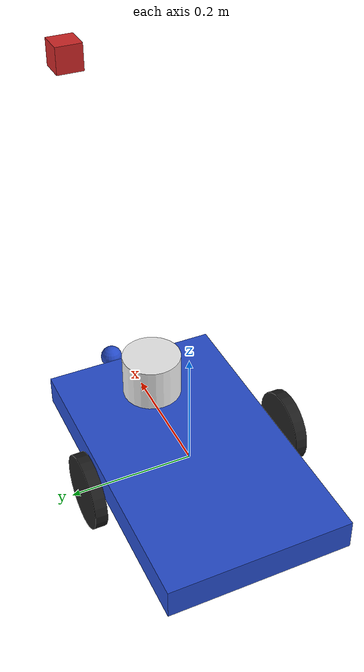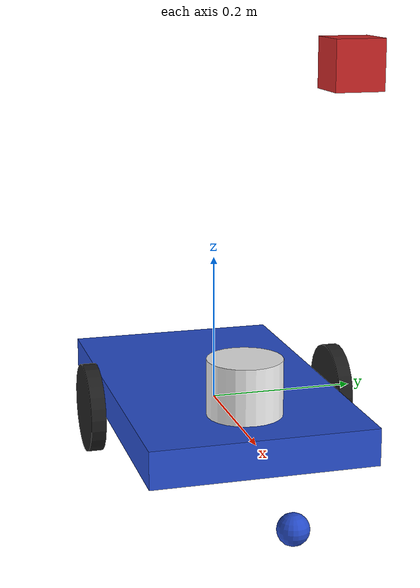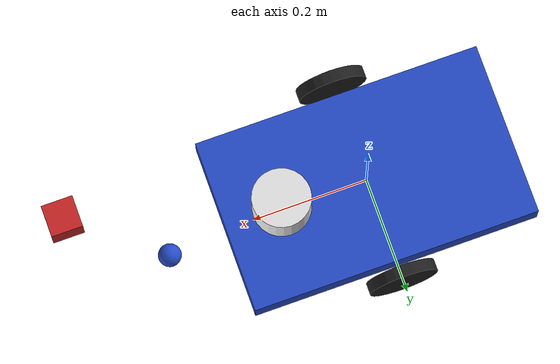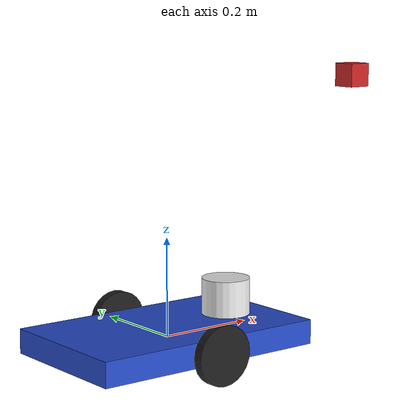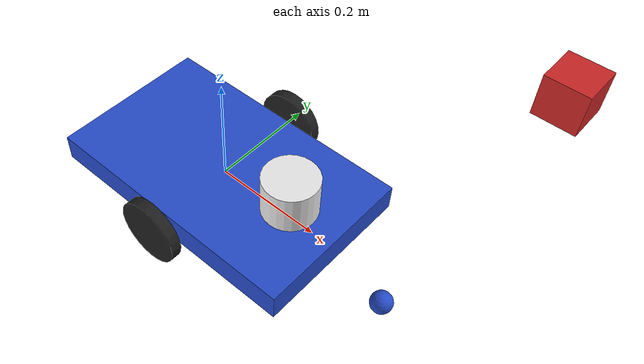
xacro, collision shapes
<?xml version="1.0" ?>
<robot name="m2wr" xmlns:xacro="http://www.ros.org/wiki/xacro">

  <xacro:include filename="$(find m2wr_description)/urdf/materials.xacro" />
  <xacro:include filename="$(find m2wr_description)/urdf/m2wr.gazebo" />
  <xacro:include filename="$(find m2wr_description)/urdf/macros.xacro" />

  <link name="base_link">
    <!-- pose and inertial -->
    <pose>0 0 0.1 0 0 0</pose>
    <inertial>
      <mass value="5"/>
      <origin rpy="0 0 0" xyz="0 0 0.1"/>
      <inertia ixx="0.0395416666667" ixy="0" ixz="0" iyy="0.106208333333" iyz="0" izz="0.106208333333"/>
    </inertial>
    <!-- body -->
    <collision name="collision_chassis">
      <geometry>
        <box size="0.5 0.3 0.05"/>
      </geometry>
    </collision>
    <visual>
      <origin rpy="0 0 0" xyz="0 0 0.01"/>
      <geometry>
        <mesh filename="file://$(find m2wr_description)/models/v1/meshes/cart.dae"  scale="1 1 1"/>
      </geometry>
      <material name="blue"/>
    </visual>
    <!-- caster front -->
    <collision name="caster_front_collision">
      <origin rpy=" 0 0 0" xyz="0.35 0 -0.05"/>
      <geometry>
        <sphere radius="0.02"/>
      </geometry>
      <surface>
        <friction>
          <ode>
            <mu>0</mu>
            <mu2>0</mu2>
            <slip1>1.0</slip1>
            <slip2>1.0</slip2>
          </ode>
        </friction>
      </surface>
    </collision>
    <visual name="caster_front_visual">
      <origin rpy=" 0 0 0" xyz="0.2 0 -0.05"/>
      <geometry>
        <sphere radius="0.02"/>
      </geometry>
    </visual>
  </link>

  <link name="sensor_laser">
    <inertial>
      <origin xyz="0 0 0" rpy="0 0 0" />
      <mass value="1" />
      <xacro:cylinder_inertia mass="1" r="0.05" l="0.1" />
    </inertial>

    <visual>
      <origin xyz="0 0 0" rpy="0 0 0" />
      <geometry>
        <cylinder radius="0.05" length="0.1"/>
      </geometry>
      <material name="white" />
    </visual>

    <collision>
      <origin xyz="0 0 0" rpy="0 0 0"/>
      <geometry>
        <cylinder radius="0.05" length="0.1"/>
      </geometry>
    </collision>
  </link>

  <joint name="joint_sensor_laser" type="fixed">
    <origin xyz="0.15 0 0.05" rpy="0 0 0"/>
    <parent link="base_link"/>
    <child link="sensor_laser"/>
  </joint>

   <joint name="camera_joint" type="fixed">
    <axis xyz="0 1 0" />
    <origin xyz="0.5 0 0.5" rpy="0 0 0"/>
    <parent link="base_link"/>
    <child link="camera_link"/>
  </joint>

  <!-- Camera -->
  <link name="camera_link">
    <collision>
      <origin xyz="0 0 0" rpy="0 0 0"/>
      <geometry>
    <box size="0.05 0.05 0.05"/>
      </geometry>
    </collision>

    <visual>
      <origin xyz="0 0 0" rpy="0 0 0"/>
      <geometry>
    <box size="0.05 0.05 0.05"/>
      </geometry>
      <material name="red"/>
    </visual>

    <inertial>
      <mass value="1e-5" />
      <origin xyz="0 0 0" rpy="0 0 0"/>
      <inertia ixx="1e-6" ixy="0" ixz="0" iyy="1e-6" iyz="0" izz="1e-6" />
    </inertial>
  </link>

  <xacro:link_wheel name="link_right_wheel" />
  <xacro:joint_wheel name="joint_right_wheel" child="link_right_wheel" origin_xyz="0 -0.175 0" />

  <xacro:link_wheel name="link_left_wheel" />
  <xacro:joint_wheel name="joint_left_wheel" child="link_left_wheel" origin_xyz="0 0.175 0" />
</robot>

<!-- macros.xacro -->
<robot xmlns:xacro="http://www.ros.org/wiki/xacro">
    <xacro:macro name="link_wheel" params="name">
        <link name="${name}">
            <inertial>
              <mass value="0.2"/>
              <origin rpy="0 1.5707 1.5707" xyz="0 0 0"/>
              <inertia ixx="0.000526666666667" ixy="0" ixz="0" iyy="0.000526666666667" iyz="0" izz="0.001"/>
            </inertial>
            <collision name="link_right_wheel_collision">
              <origin rpy="0 1.5707 1.5707" xyz="0 0 0"/>
              <geometry>
                <cylinder length="0.02" radius="0.06"/>
              </geometry>
            </collision>
            <visual name="${name}_visual">
              <origin rpy="0 1.5707 1.5707" xyz="0 0 0"/>
              <geometry>
                <cylinder length="0.02" radius="0.06"/>
              </geometry>
            </visual>
        </link>
    </xacro:macro>

    <xacro:macro name="joint_wheel" params="name child origin_xyz">
      <joint name="${name}" type="continuous">
        <origin rpy="0 0 0" xyz="${origin_xyz}"/>
        <child link="${child}"/>
        <parent link="base_link"/>
        <axis rpy="0 0 0" xyz="0 1 0"/>
        <limit effort="10000" velocity="1000"/>
        <joint_properties damping="1.0" friction="1.0"/>
      </joint>
    </xacro:macro>

    <xacro:macro name="cylinder_inertia" params="mass r l">
      <inertia  ixx="${mass*(3*r*r+l*l)/12}" ixy = "0" ixz = "0"
                iyy="${mass*(3*r*r+l*l)/12}" iyz = "0"
                izz="${mass*(r*r)/2}" />
    </xacro:macro>
</robot>
